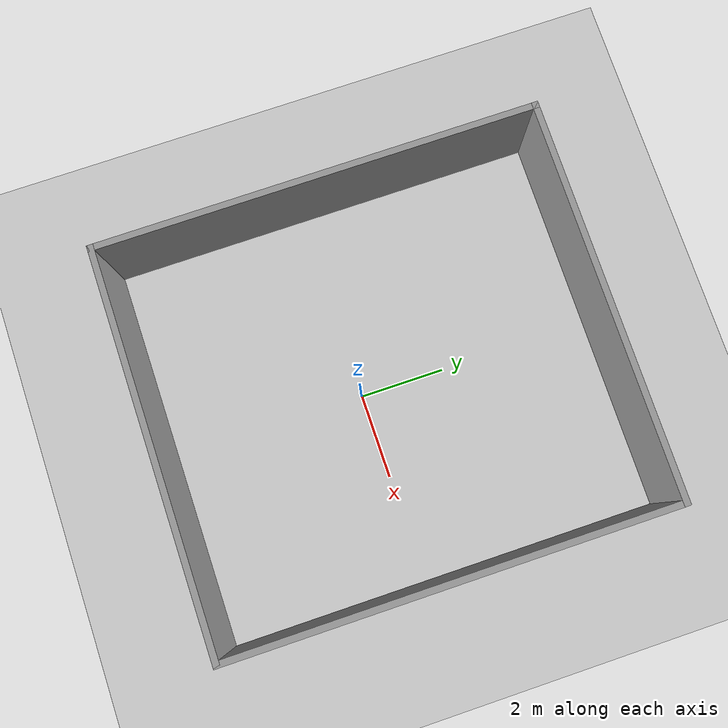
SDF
<sdf version="1.7">
 <world name="default">
  <model name="ground_plane">
   <static>1</static>
   <link name="link">
    <collision name="collision">
     <geometry><plane><normal>0 0 1</normal><size>100 100</size></plane></geometry>
     <surface>
      <contact><collide_bitmask>65535</collide_bitmask></contact>
      <friction><ode><mu>100</mu><mu2>50</mu2></ode></friction>
     </surface>
    </collision>
    <visual name="visual">
     <cast_shadows>0</cast_shadows>
     <geometry><plane><normal>0 0 1</normal><size>100 100</size></plane></geometry>
     <material>
      <script><uri>file://media/materials/scripts/gazebo.material</uri><name>Gazebo/Grey</name></script>
     </material>
    </visual>
   </link>
  </model>
  <model name="map_s_trap_outer">
   <link name="Wall_bottom">
    <collision name="Wall_bottom_Collision">
     <geometry><box><size>9.35 0.15 2.5</size></box></geometry>
     <pose>0 0 1.25 0 -0 0</pose>
    </collision>
    <visual name="Wall_bottom_Visual">
     <pose>0 0 1.25 0 -0 0</pose>
     <geometry><box><size>9.35 0.15 2.5</size></box></geometry>
     <material>
      <script><uri>file://media/materials/scripts/gazebo.material</uri><name>Gazebo/Grey</name></script>
      <ambient>1 1 1 1</ambient>
     </material>
    </visual>
    <pose>0.000000 -4.600000 0 0 -0 0.000000</pose>
   </link>
   <link name="Wall_top">
    <collision name="Wall_top_Collision">
     <geometry><box><size>9.35 0.15 2.5</size></box></geometry>
     <pose>0 0 1.25 0 -0 0</pose>
    </collision>
    <visual name="Wall_top_Visual">
     <pose>0 0 1.25 0 -0 0</pose>
     <geometry><box><size>9.35 0.15 2.5</size></box></geometry>
     <material>
      <script><uri>file://media/materials/scripts/gazebo.material</uri><name>Gazebo/Grey</name></script>
      <ambient>1 1 1 1</ambient>
     </material>
    </visual>
    <pose>0.000000 5.620000 0 0 -0 0.000000</pose>
   </link>
   <link name="Wall_left">
    <collision name="Wall_left_Collision">
     <geometry><box><size>10.37 0.15 2.5</size></box></geometry>
     <pose>0 0 1.25 0 -0 0</pose>
    </collision>
    <visual name="Wall_left_Visual">
     <pose>0 0 1.25 0 -0 0</pose>
     <geometry><box><size>10.37 0.15 2.5</size></box></geometry>
     <material>
      <script><uri>file://media/materials/scripts/gazebo.material</uri><name>Gazebo/Grey</name></script>
      <ambient>1 1 1 1</ambient>
     </material>
    </visual>
    <pose>-4.600000 0.510000 0 0 -0 1.570796</pose>
   </link>
   <link name="Wall_right">
    <collision name="Wall_right_Collision">
     <geometry><box><size>10.37 0.15 2.5</size></box></geometry>
     <pose>0 0 1.25 0 -0 0</pose>
    </collision>
    <visual name="Wall_right_Visual">
     <pose>0 0 1.25 0 -0 0</pose>
     <geometry><box><size>10.37 0.15 2.5</size></box></geometry>
     <material>
      <script><uri>file://media/materials/scripts/gazebo.material</uri><name>Gazebo/Grey</name></script>
      <ambient>1 1 1 1</ambient>
     </material>
    </visual>
    <pose>4.600000 0.510000 0 0 -0 1.570796</pose>
   </link>
   <static>1</static>
  </model>
 </world>
</sdf>
